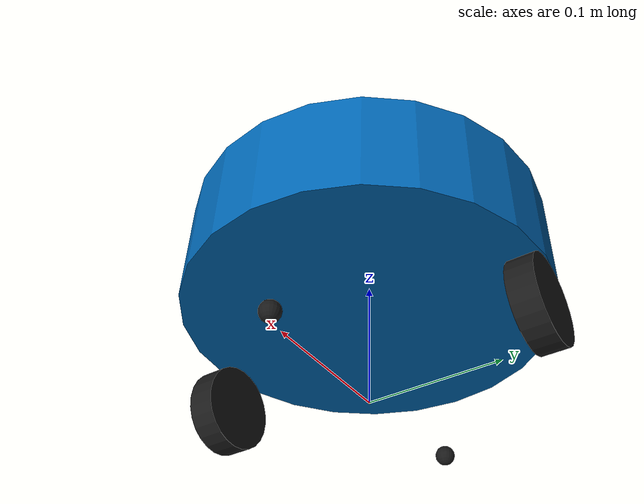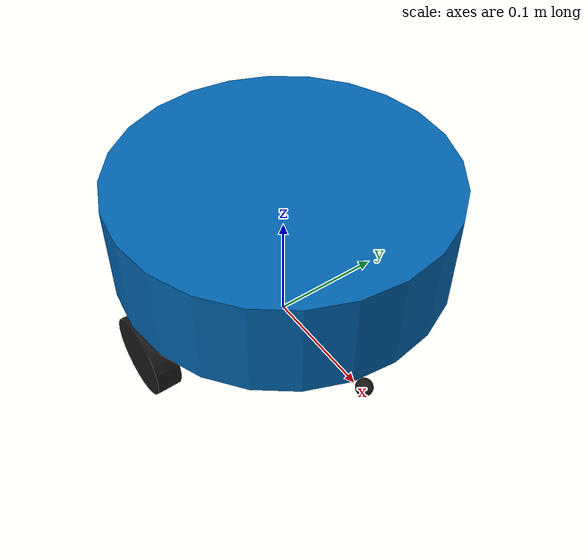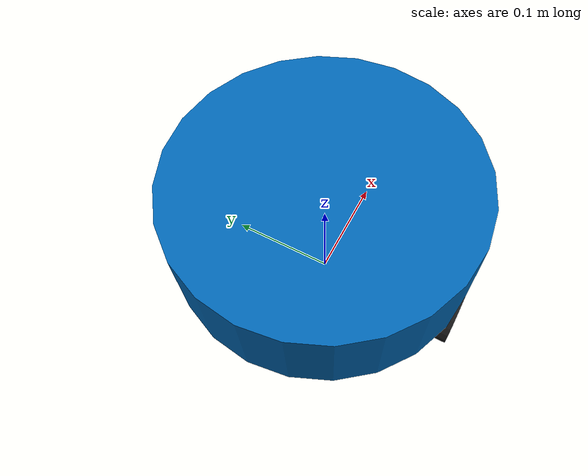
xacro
<robot name="mycar" xmlns:xacro="http://wiki.ros.org/xacro">
    <!-- 飞马旅圆形两轮差速AGV -->

    <!--1.添加base_footprint-->
    <xacro:property name="footprint_radius" value="0.001" />

    <link name="base_footprint">
        <visual>
            <geometry>
                <sphere radius="${footprint_radius}" />
            </geometry>
        </visual>
    </link>

    <!--2.添加底盘base_link-->
    <!--形状：圆柱体 半径：0.09m; 高度：0.85m; 质量50kg; 离地距离：0.07m-->
    <!--跟实际AGV略有不同：高度减了一些，补偿到lidi，防止轮胎和地盘重合。-->
    <xacro:property name="base_radius" value="0.14" />
    <xacro:property name="base_mass" value="20" />  <!-- 太轻会导致转弯抖动 -->
    <xacro:property name="base_length" value="0.085" />
    <xacro:property name="lidi" value="0.07" />
    <xacro:property name="base_joint_z" value="${base_length/2+lidi}" />

    <!--2.1 link-->
    <link name="base_link">
        <visual>
            <geometry>
                <cylinder radius="${base_radius}" length="${base_length}" />
            </geometry>

            <origin xyz="0 0 0" rpy="0 0 0" />

            <material name="baselink_color">
                <color rgba="0.0 0.4 0.7 1" />
            </material>
        </visual>

        <collision>
            <geometry>
                <cylinder radius="${base_radius}" length="${base_length}" />
            </geometry>

            <origin xyz="0 0 0" rpy="0 0 0" />
        </collision>
        <!--调用惯性矩阵函数,包含在head.xacro中-->
        <xacro:cylinder_inertial_matrix m="${base_mass}" r="${base_radius}" h="${base_length}" />
    </link>

    <!--gazebo需要单独设置颜色-->
    <gazebo reference="base_link">
        <material>
            Gazebo/Blue
        </material>
    </gazebo>

    <!--2.2 joint-->
    <joint name="link2footprint" type="fixed">
        <parent link="base_footprint" />
        <child link="base_link" />
        <origin xyz="0 0 ${base_joint_z}" rpy="0 0 0" />
    </joint>

    <!--3.添加左右驱动轮-->
    <!--形状：圆柱 半径：0.033m 长度：0.023m; 质量6kg(质量不要改，会影响PID控制性能，现在是K=0.6的状态)-->
    <xacro:property name="wheel_radius" value="0.033" />
    <xacro:property name="wheel_length" value="0.02" /> <!-- 实际0.023,搞小一点，防止原地掉头摩擦抖动 -->
    <xacro:property name="wheel_mass" value="6" />
    <xacro:property name="PI" value="3.14159265359" />
    <!--y轴上的偏移量=车体半径-车轮长度/2  -->
    <xacro:property name="wheel_joint_y" value="${base_radius-wheel_length/2}" />
    <xacro:property name="wheel_joint_z" value="${-1*(base_joint_z - wheel_radius)}" />
    <!--
        wheel_name:left right
        flag:left==>1 right==>-1
    -->
    <xacro:macro name="wheel_func" params="wheel_name flag">
        <!--3.1 link-->
        <link name="${wheel_name}_wheel">
            <visual>
                <geometry>
                    <cylinder radius="${wheel_radius}" length="${wheel_length}" />
                </geometry>
                <!--  车轮需要竖起来，即沿着x轴旋转PI/2  -->
                <origin xyz="0 0 0" rpy="${PI/2} 0 0" />

                <material name="wheel_color">
                    <color rgba="0.1 0.1 0.1 1" />
                </material>
            </visual>
            <collision>
                <geometry>
                    <cylinder radius="${wheel_radius}" length="${wheel_length}" />
                </geometry>

                <origin xyz="0 0 0" rpy="${PI/2} 0 0" />
            </collision>

            <!--调用惯性矩阵函数-->
            <xacro:cylinder_inertial_matrix m="${wheel_mass}" r="${wheel_radius}" h="${wheel_length}" />
        </link>

        <!--gazebo需要单独设置颜色-->
        <gazebo reference="${wheel_name}_wheel">
            <material>Gazebo/Black</material>
        </gazebo>

        <!--3.2 joint-->
        <joint name="${wheel_name}2link" type="continuous">
            <parent link="base_link" />
            <child link="${wheel_name}_wheel" />
            <origin xyz="0 ${wheel_joint_y*flag} ${wheel_joint_z}" rpy="0 0 0" />
            <!--轮子沿着y轴转-->
            <axis xyz="0 1 0" />
        </joint>

    </xacro:macro>
    <!--调用宏，生成左右两侧驱动轮-->
    <xacro:wheel_func wheel_name="left" flag="1" />
    <xacro:wheel_func wheel_name="right" flag="-1" />

    <!--4.添加万向轮-->
    <!--形状：球 半径：0.0075m-->
    <xacro:property name="small_wheel_radius" value="0.0075" />
    <xacro:property name="small_wheel_mass" value="0.25" />
    <xacro:property name="small_joint_x" value="${0.8*base_radius}" />
    <xacro:property name="small_joint_z" value="${-1*(base_joint_z-small_wheel_radius)}" />

    <xacro:macro name="small_wheel_func" params="small_wheel_name flag">
        <!--4.1 link-->
        <link name="${small_wheel_name}_wheel">
            <visual>
                <geometry>
                    <sphere radius="${small_wheel_radius}" />
                </geometry>

                <origin xyz="0 0 0" rpy="0 0 0" />

                <material name="wheel_color">
                    <color rgba="0.1 0.1 0.1 1" />
                </material>
            </visual>

            <collision>
                <geometry>
                    <sphere radius="${small_wheel_radius}" />
                </geometry>

                <origin xyz="0 0 0" rpy="0 0 0" />
            </collision>

            <!--调用惯性矩阵函数-->
            <xacro:sphere_inertial_matrix m="${small_wheel_mass}" r="${small_wheel_radius}"/>
        </link>

        <!--gazebo需要单独设置颜色-->
        <gazebo reference="${small_wheel_name}_wheel">
            <material>Gazebo/Black</material>
        </gazebo>

        <!--4.2 joint-->
        <joint name="${small_wheel_name}2link" type="continuous">
            <parent link="base_link" />
            <child link="${small_wheel_name}_wheel" />
            <origin xyz="${small_joint_x*flag} 0 ${small_joint_z}" rpy="0 0 0" />
            <!--轮子沿着y轴转-->
            <axis xyz="0 1 0" />
        </joint>
    </xacro:macro>

    <xacro:small_wheel_func small_wheel_name="front" flag="1" />
    <xacro:small_wheel_func small_wheel_name="back" flag="-1" />

</robot>
